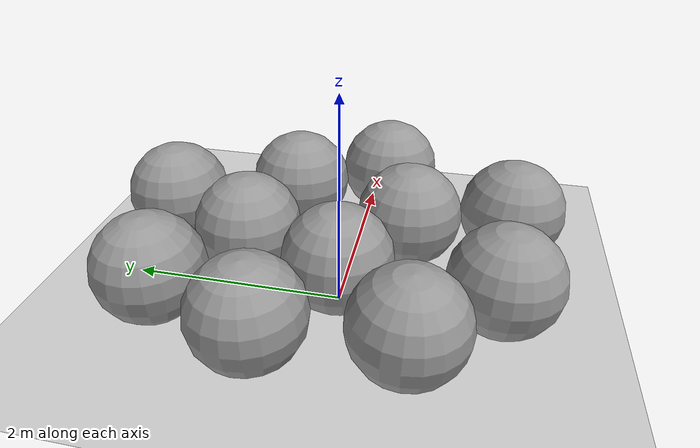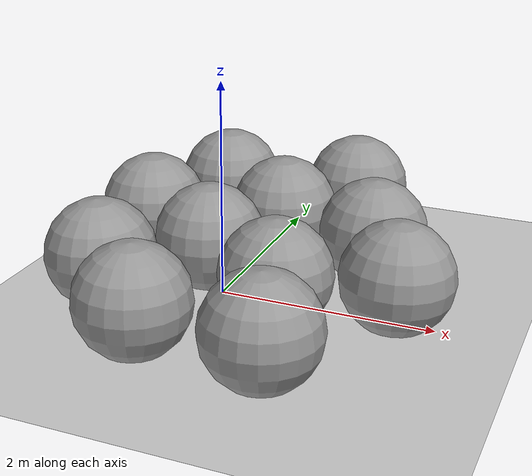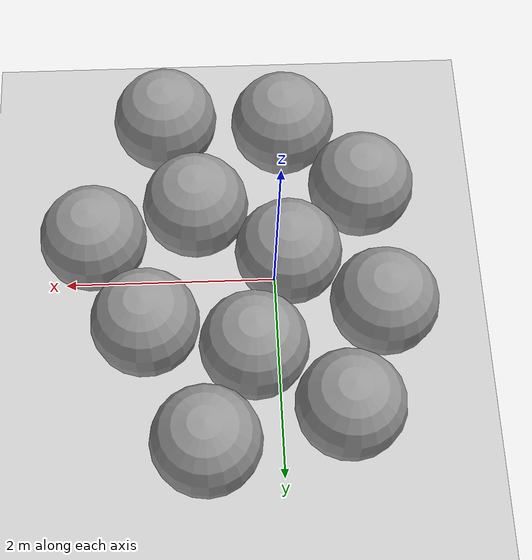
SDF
<sdf version="1.6">
 <world name="default">
  <light name="sun" type="directional">
   <pose>0 0 10 0 -0 0</pose>
   <diffuse>0.8 0.8 0.8 1</diffuse>
   <specular>0.2 0.2 0.2 1</specular>
   <attenuation>
    <range>1000</range>
    <constant>0.9</constant>
    <linear>0.01</linear>
    <quadratic>0.001</quadratic>
   </attenuation>
   <direction>-0.5 0.1 -0.9</direction>
  </light>
  <model name="ground_plane">
   <static>1</static>
   <link name="link">
    <collision name="collision">
     <geometry><plane><normal>0 0 1</normal><size>100 100</size></plane></geometry>
     <surface>
      <contact><collide_bitmask>65535</collide_bitmask></contact>
      <friction><ode><mu>100</mu><mu2>50</mu2></ode></friction>
     </surface>
    </collision>
    <visual name="visual">
     <cast_shadows>0</cast_shadows>
     <geometry><plane><normal>0 0 1</normal><size>100 100</size></plane></geometry>
     <material>
      <script><uri>file://media/materials/scripts/gazebo.material</uri><name>Gazebo/Grey</name></script>
     </material>
    </visual>
   </link>
  </model>
  <gravity>0 0 -9.8</gravity>
  <magnetic_field>6e-06 2.3e-05 -4.2e-05</magnetic_field>
  <atmosphere type="adiabatic"/>
  <physics name="default_physics" default="0" type="ode">
   <max_step_size>0.001</max_step_size>
   <real_time_factor>1</real_time_factor>
   <real_time_update_rate>1000</real_time_update_rate>
  </physics>
  <scene><ambient>0.4 0.4 0.4 1</ambient><background>0.7 0.7 0.7 1</background><shadows>1</shadows></scene>
  <spherical_coordinates>
   <surface_model>EARTH_WGS84</surface_model>
   <latitude_deg>0</latitude_deg>
   <longitude_deg>0</longitude_deg>
   <elevation>0</elevation>
   <heading_deg>0</heading_deg>
  </spherical_coordinates>
  <model name="unit_sphere">
   <pose>0.241122 0.924739 0.55 0.005403 -0.016472 0.002906</pose>
   <link name="link">
    <inertial>
     <mass>1</mass>
     <inertia><ixx>0.1</ixx><ixy>0</ixy><ixz>0</ixz><iyy>0.1</iyy><iyz>0</iyz><izz>0.1</izz></inertia>
    </inertial>
    <collision name="collision"><geometry><sphere><radius>0.5</radius></sphere></geometry></collision>
    <visual name="visual">
     <geometry><sphere><radius>0.5</radius></sphere></geometry>
     <material>
      <script><name>Gazebo/Grey</name><uri>file://media/materials/scripts/gazebo.material</uri></script>
     </material>
    </visual>
   </link>
  </model>
  <model name="unit_sphere_clone">
   <pose>0.734989 -0.540544 0.55 -0.002367 -0.000338 -0.001767</pose>
   <link name="link">
    <inertial>
     <mass>1</mass>
     <inertia><ixx>0.1</ixx><ixy>0</ixy><ixz>0</ixz><iyy>0.1</iyy><iyz>0</iyz><izz>0.1</izz></inertia>
    </inertial>
    <collision name="collision"><geometry><sphere><radius>0.5</radius></sphere></geometry></collision>
    <visual name="visual">
     <geometry><sphere><radius>0.5</radius></sphere></geometry>
     <material>
      <script><name>Gazebo/Grey</name><uri>file://media/materials/scripts/gazebo.material</uri></script>
     </material>
    </visual>
   </link>
  </model>
  <model name="unit_sphere_clone_0">
   <pose>-0.843046 -0.72058 0.55 0.014192 -0.039749 0.005369</pose>
   <link name="link">
    <inertial>
     <mass>1</mass>
     <inertia><ixx>0.1</ixx><ixy>0</ixy><ixz>0</ixz><iyy>0.1</iyy><iyz>0</iyz><izz>0.1</izz></inertia>
    </inertial>
    <collision name="collision"><geometry><sphere><radius>0.5</radius></sphere></geometry></collision>
    <visual name="visual">
     <geometry><sphere><radius>0.5</radius></sphere></geometry>
     <material>
      <script><name>Gazebo/Grey</name><uri>file://media/materials/scripts/gazebo.material</uri></script>
     </material>
    </visual>
   </link>
  </model>
  <model name="unit_sphere_clone_1">
   <pose>-0.965842 0.525569 0.55 -0.021014 -0.02168 -0.049774</pose>
   <link name="link">
    <inertial>
     <mass>1</mass>
     <inertia><ixx>0.1</ixx><ixy>0</ixy><ixz>0</ixz><iyy>0.1</iyy><iyz>0</iyz><izz>0.1</izz></inertia>
    </inertial>
    <collision name="collision"><geometry><sphere><radius>0.5</radius></sphere></geometry></collision>
    <visual name="visual">
     <geometry><sphere><radius>0.5</radius></sphere></geometry>
     <material>
      <script><name>Gazebo/Grey</name><uri>file://media/materials/scripts/gazebo.material</uri></script>
     </material>
    </visual>
   </link>
  </model>
  <model name="unit_sphere_clone_2">
   <pose>-0.583846 1.52736 0.55 -0.006938 -0.019243 -0.234574</pose>
   <link name="link">
    <inertial>
     <mass>1</mass>
     <inertia><ixx>0.1</ixx><ixy>0</ixy><ixz>0</ixz><iyy>0.1</iyy><iyz>0</iyz><izz>0.1</izz></inertia>
    </inertial>
    <collision name="collision"><geometry><sphere><radius>0.5</radius></sphere></geometry></collision>
    <visual name="visual">
     <geometry><sphere><radius>0.5</radius></sphere></geometry>
     <material>
      <script><name>Gazebo/Grey</name><uri>file://media/materials/scripts/gazebo.material</uri></script>
     </material>
    </visual>
   </link>
  </model>
  <model name="unit_sphere_clone_3">
   <pose>0.69844 1.82505 0.55 -0.025134 0.009901 0.024589</pose>
   <link name="link">
    <inertial>
     <mass>1</mass>
     <inertia><ixx>0.1</ixx><ixy>0</ixy><ixz>0</ixz><iyy>0.1</iyy><iyz>0</iyz><izz>0.1</izz></inertia>
    </inertial>
    <collision name="collision"><geometry><sphere><radius>0.5</radius></sphere></geometry></collision>
    <visual name="visual">
     <geometry><sphere><radius>0.5</radius></sphere></geometry>
     <material>
      <script><name>Gazebo/Grey</name><uri>file://media/materials/scripts/gazebo.material</uri></script>
     </material>
    </visual>
   </link>
  </model>
  <model name="unit_sphere_clone_4">
   <pose>1.22076 0.66792 0.55 0.004496 0.032499 0.17255</pose>
   <link name="link">
    <inertial>
     <mass>1</mass>
     <inertia><ixx>0.1</ixx><ixy>0</ixy><ixz>0</ixz><iyy>0.1</iyy><iyz>0</iyz><izz>0.1</izz></inertia>
    </inertial>
    <collision name="collision"><geometry><sphere><radius>0.5</radius></sphere></geometry></collision>
    <visual name="visual">
     <geometry><sphere><radius>0.5</radius></sphere></geometry>
     <material>
      <script><name>Gazebo/Grey</name><uri>file://media/materials/scripts/gazebo.material</uri></script>
     </material>
    </visual>
   </link>
  </model>
  <model name="unit_sphere_clone_5">
   <pose>1.69649 -0.215125 0.55 -0.004502 0.024026 -0.104561</pose>
   <link name="link">
    <inertial>
     <mass>1</mass>
     <inertia><ixx>0.1</ixx><ixy>0</ixy><ixz>0</ixz><iyy>0.1</iyy><iyz>0</iyz><izz>0.1</izz></inertia>
    </inertial>
    <collision name="collision"><geometry><sphere><radius>0.5</radius></sphere></geometry></collision>
    <visual name="visual">
     <geometry><sphere><radius>0.5</radius></sphere></geometry>
     <material>
      <script><name>Gazebo/Grey</name><uri>file://media/materials/scripts/gazebo.material</uri></script>
     </material>
    </visual>
   </link>
  </model>
  <model name="unit_sphere_clone_6">
   <pose>1.00798 -1.51587 0.55 0.02212 0.006719 0.034607</pose>
   <link name="link">
    <inertial>
     <mass>1</mass>
     <inertia><ixx>0.1</ixx><ixy>0</ixy><ixz>0</ixz><iyy>0.1</iyy><iyz>0</iyz><izz>0.1</izz></inertia>
    </inertial>
    <collision name="collision"><geometry><sphere><radius>0.5</radius></sphere></geometry></collision>
    <visual name="visual">
     <geometry><sphere><radius>0.5</radius></sphere></geometry>
     <material>
      <script><name>Gazebo/Grey</name><uri>file://media/materials/scripts/gazebo.material</uri></script>
     </material>
    </visual>
   </link>
  </model>
  <model name="unit_sphere_clone_7">
   <pose>-0.134198 -1.44176 0.55 0.012394 0.003394 0.066687</pose>
   <link name="link">
    <inertial>
     <mass>1</mass>
     <inertia><ixx>0.1</ixx><ixy>0</ixy><ixz>0</ixz><iyy>0.1</iyy><iyz>0</iyz><izz>0.1</izz></inertia>
    </inertial>
    <collision name="collision"><geometry><sphere><radius>0.5</radius></sphere></geometry></collision>
    <visual name="visual">
     <geometry><sphere><radius>0.5</radius></sphere></geometry>
     <material>
      <script><name>Gazebo/Grey</name><uri>file://media/materials/scripts/gazebo.material</uri></script>
     </material>
    </visual>
   </link>
  </model>
  <model name="unit_sphere_clone_8">
   <pose>-0.117504 -0.015688 0.55 -0.00395 -0.007153 -0.010932</pose>
   <link name="link">
    <inertial>
     <mass>1</mass>
     <inertia><ixx>0.1</ixx><ixy>0</ixy><ixz>0</ixz><iyy>0.1</iyy><iyz>0</iyz><izz>0.1</izz></inertia>
    </inertial>
    <collision name="collision"><geometry><sphere><radius>0.5</radius></sphere></geometry></collision>
    <visual name="visual">
     <geometry><sphere><radius>0.5</radius></sphere></geometry>
     <material>
      <script><name>Gazebo/Grey</name><uri>file://media/materials/scripts/gazebo.material</uri></script>
     </material>
    </visual>
   </link>
  </model>
 </world>
</sdf>
